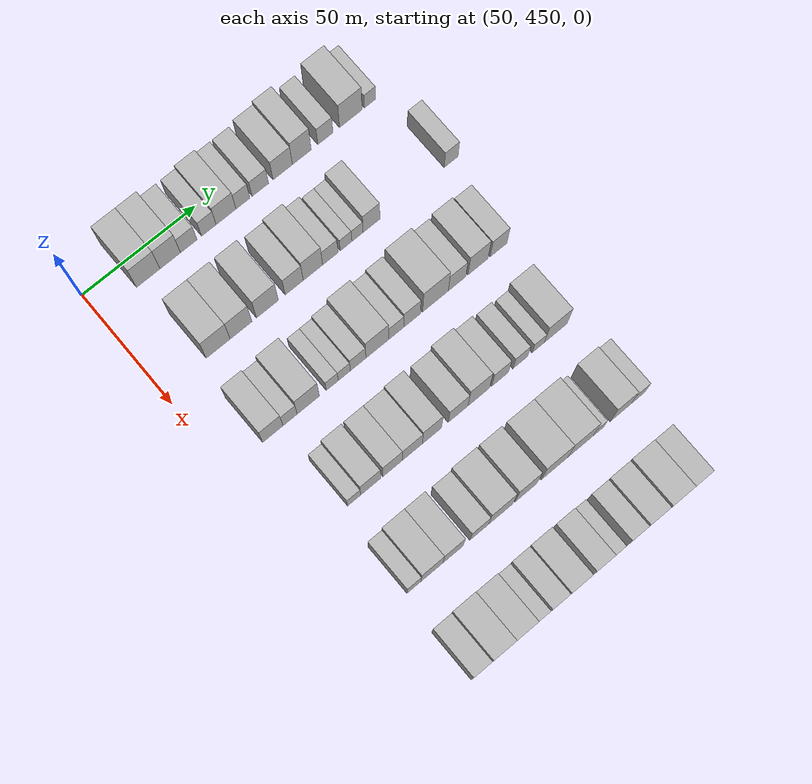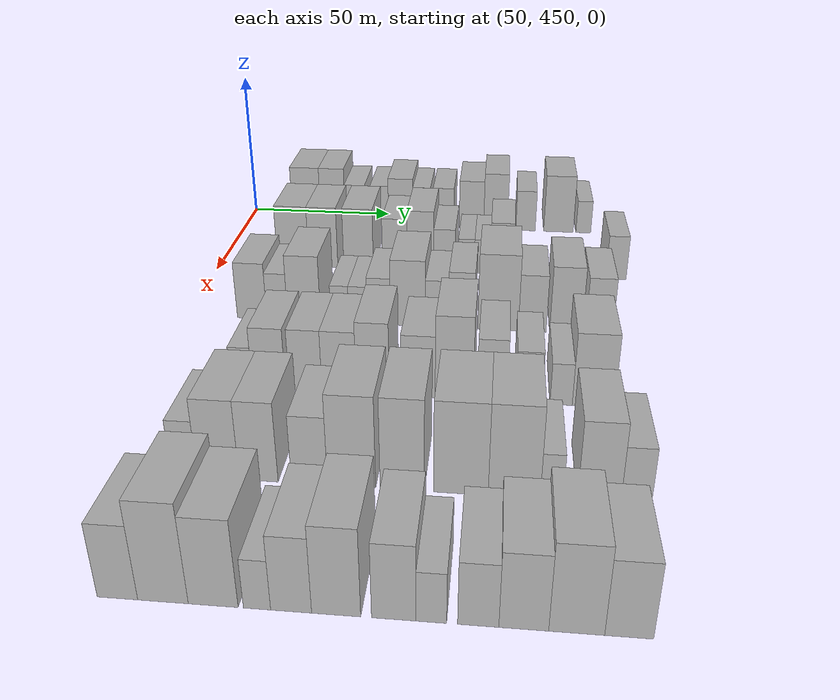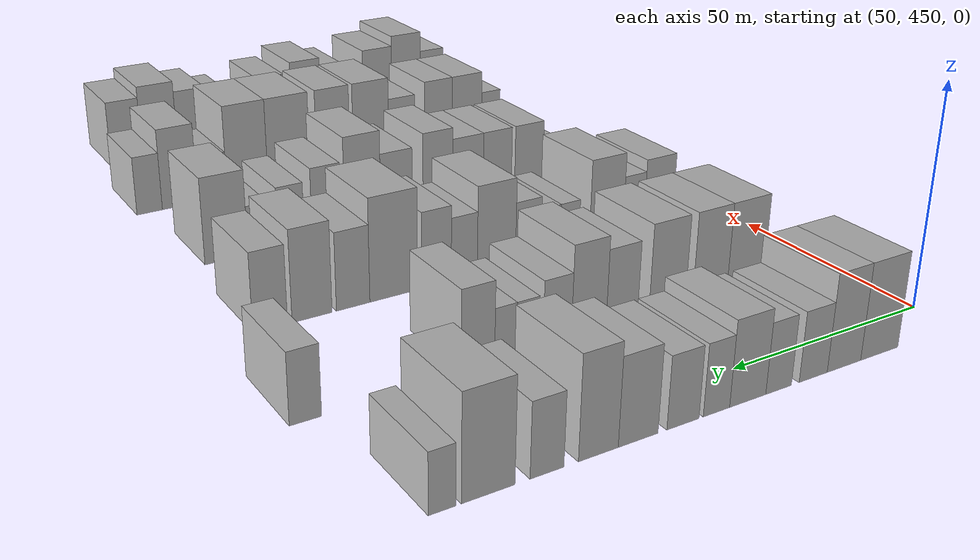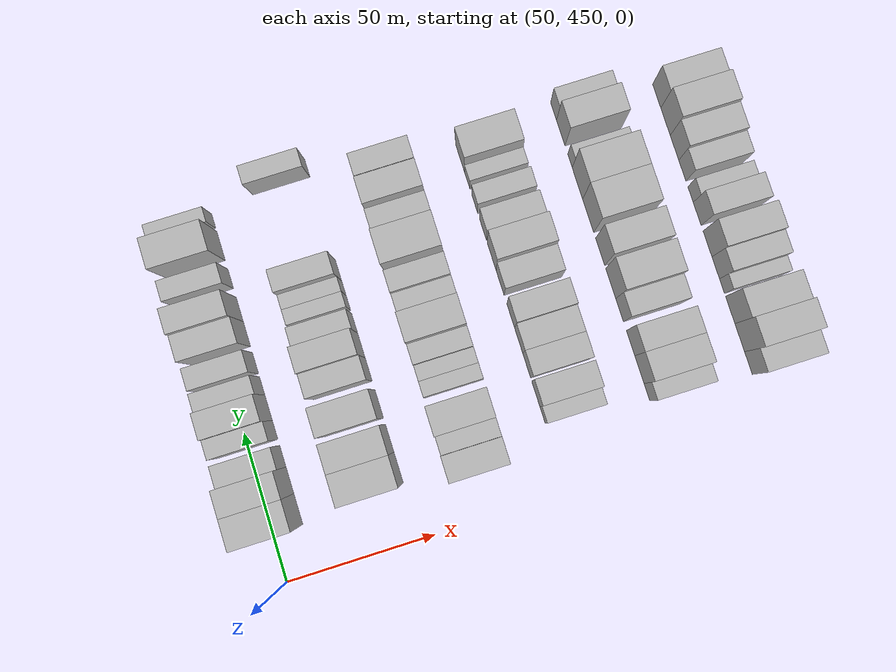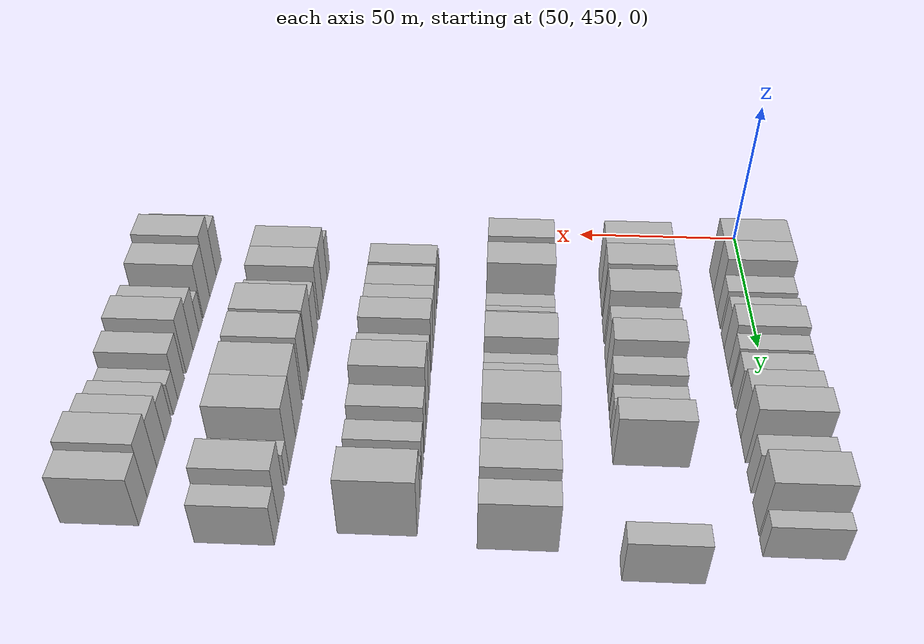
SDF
<sdf version="1.6">
 <world name="default">
  <model name="building_112">
   <static>1</static>
   <pose>50.0000 471.2989 0 0.000000 0.000000 0.000000</pose>
   <link name="link">
    <pose>0 0 10.50 0 0 0</pose>
    <collision name="collision"><geometry><box><size>20.0000 10.3489 21.0000</size></box></geometry></collision>
    <visual name="visual">
     <cast_shadows>0</cast_shadows>
     <geometry><box><size>20.0000 10.3489 21.0000</size></box></geometry>
     <material>
      <script>
       <uri>model://HANNAS_wall/materials/scripts</uri>
       <uri>model://HANNAS_wall/materials/textures</uri>
       <name>vrc/HANNAS_wall</name>
      </script>
     </material>
    </visual>
   </link>
  </model>
  <model name="building_113">
   <static>1</static>
   <pose>50.0000 480.9723 0 0.000000 0.000000 0.000000</pose>
   <link name="link">
    <pose>0 0 10.50 0 0 0</pose>
    <collision name="collision"><geometry><box><size>20.0000 8.9978 21.0000</size></box></geometry></collision>
    <visual name="visual">
     <cast_shadows>0</cast_shadows>
     <geometry><box><size>20.0000 8.9978 21.0000</size></box></geometry>
     <material>
      <script>
       <uri>model://HANNAS_wall/materials/scripts</uri>
       <uri>model://HANNAS_wall/materials/textures</uri>
       <name>vrc/HANNAS_wall</name>
      </script>
     </material>
    </visual>
   </link>
  </model>
  <model name="building_114">
   <static>1</static>
   <pose>50.0000 489.1325 0 0.000000 0.000000 0.000000</pose>
   <link name="link">
    <pose>0 0 7.50 0 0 0</pose>
    <collision name="collision"><geometry><box><size>20.0000 7.3226 15.0000</size></box></geometry></collision>
    <visual name="visual">
     <cast_shadows>0</cast_shadows>
     <geometry><box><size>20.0000 7.3226 15.0000</size></box></geometry>
     <material>
      <script>
       <uri>model://HANNAS_wall/materials/scripts</uri>
       <uri>model://HANNAS_wall/materials/textures</uri>
       <name>vrc/HANNAS_wall</name>
      </script>
     </material>
    </visual>
   </link>
  </model>
  <model name="building_115">
   <static>1</static>
   <pose>50.0000 498.0168 0 0.000000 0.000000 0.000000</pose>
   <link name="link">
    <pose>0 0 7.50 0 0 0</pose>
    <collision name="collision"><geometry><box><size>20.0000 6.4461 15.0000</size></box></geometry></collision>
    <visual name="visual">
     <cast_shadows>0</cast_shadows>
     <geometry><box><size>20.0000 6.4461 15.0000</size></box></geometry>
     <material>
      <script>
       <uri>model://HANNAS_wall/materials/scripts</uri>
       <uri>model://HANNAS_wall/materials/textures</uri>
       <name>vrc/HANNAS_wall</name>
      </script>
     </material>
    </visual>
   </link>
  </model>
  <model name="building_116">
   <static>1</static>
   <pose>50.0000 505.6625 0 0.000000 0.000000 0.000000</pose>
   <link name="link">
    <pose>0 0 9.00 0 0 0</pose>
    <collision name="collision"><geometry><box><size>20.0000 8.8452 18.0000</size></box></geometry></collision>
    <visual name="visual">
     <cast_shadows>0</cast_shadows>
     <geometry><box><size>20.0000 8.8452 18.0000</size></box></geometry>
     <material>
      <script>
       <uri>model://HANNAS_wall/materials/scripts</uri>
       <uri>model://HANNAS_wall/materials/textures</uri>
       <name>vrc/HANNAS_wall</name>
      </script>
     </material>
    </visual>
   </link>
  </model>
  <model name="building_117">
   <static>1</static>
   <pose>50.0000 513.2185 0 0.000000 0.000000 0.000000</pose>
   <link name="link">
    <pose>0 0 7.50 0 0 0</pose>
    <collision name="collision"><geometry><box><size>20.0000 6.2669 15.0000</size></box></geometry></collision>
    <visual name="visual">
     <cast_shadows>0</cast_shadows>
     <geometry><box><size>20.0000 6.2669 15.0000</size></box></geometry>
     <material>
      <script>
       <uri>model://HANNAS_wall/materials/scripts</uri>
       <uri>model://HANNAS_wall/materials/textures</uri>
       <name>vrc/HANNAS_wall</name>
      </script>
     </material>
    </visual>
   </link>
  </model>
  <model name="building_118">
   <static>1</static>
   <pose>50.0000 521.0438 0 0.000000 0.000000 0.000000</pose>
   <link name="link">
    <pose>0 0 7.50 0 0 0</pose>
    <collision name="collision"><geometry><box><size>20.0000 7.3837 15.0000</size></box></geometry></collision>
    <visual name="visual">
     <cast_shadows>0</cast_shadows>
     <geometry><box><size>20.0000 7.3837 15.0000</size></box></geometry>
     <material>
      <script>
       <uri>model://HANNAS_wall/materials/scripts</uri>
       <uri>model://HANNAS_wall/materials/textures</uri>
       <name>vrc/HANNAS_wall</name>
      </script>
     </material>
    </visual>
   </link>
  </model>
  <model name="building_119">
   <static>1</static>
   <pose>50.0000 531.1199 0 0.000000 0.000000 0.000000</pose>
   <link name="link">
    <pose>0 0 9.00 0 0 0</pose>
    <collision name="collision"><geometry><box><size>20.0000 8.7686 18.0000</size></box></geometry></collision>
    <visual name="visual">
     <cast_shadows>0</cast_shadows>
     <geometry><box><size>20.0000 8.7686 18.0000</size></box></geometry>
     <material>
      <script>
       <uri>model://HANNAS_wall/materials/scripts</uri>
       <uri>model://HANNAS_wall/materials/textures</uri>
       <name>vrc/HANNAS_wall</name>
      </script>
     </material>
    </visual>
   </link>
  </model>
  <model name="building_120">
   <static>1</static>
   <pose>50.0000 539.7462 0 0.000000 0.000000 0.000000</pose>
   <link name="link">
    <pose>0 0 10.50 0 0 0</pose>
    <collision name="collision"><geometry><box><size>20.0000 8.4839 21.0000</size></box></geometry></collision>
    <visual name="visual">
     <cast_shadows>0</cast_shadows>
     <geometry><box><size>20.0000 8.4839 21.0000</size></box></geometry>
     <material>
      <script>
       <uri>model://HANNAS_wall/materials/scripts</uri>
       <uri>model://HANNAS_wall/materials/textures</uri>
       <name>vrc/HANNAS_wall</name>
      </script>
     </material>
    </visual>
   </link>
  </model>
  <model name="building_121">
   <static>1</static>
   <pose>50.0000 550.4350 0 0.000000 0.000000 0.000000</pose>
   <link name="link">
    <pose>0 0 7.50 0 0 0</pose>
    <collision name="collision"><geometry><box><size>20.0000 6.8938 15.0000</size></box></geometry></collision>
    <visual name="visual">
     <cast_shadows>0</cast_shadows>
     <geometry><box><size>20.0000 6.8938 15.0000</size></box></geometry>
     <material>
      <script>
       <uri>model://HANNAS_wall/materials/scripts</uri>
       <uri>model://HANNAS_wall/materials/textures</uri>
       <name>vrc/HANNAS_wall</name>
      </script>
     </material>
    </visual>
   </link>
  </model>
  <model name="building_122">
   <static>1</static>
   <pose>50.0000 562.0634 0 0.000000 0.000000 0.000000</pose>
   <link name="link">
    <pose>0 0 10.50 0 0 0</pose>
    <collision name="collision"><geometry><box><size>20.0000 10.3630 21.0000</size></box></geometry></collision>
    <visual name="visual">
     <cast_shadows>0</cast_shadows>
     <geometry><box><size>20.0000 10.3630 21.0000</size></box></geometry>
     <material>
      <script>
       <uri>model://HANNAS_wall/materials/scripts</uri>
       <uri>model://HANNAS_wall/materials/textures</uri>
       <name>vrc/HANNAS_wall</name>
      </script>
     </material>
    </visual>
   </link>
  </model>
  <model name="building_123">
   <static>1</static>
   <pose>50.0000 570.8287 0 0.000000 0.000000 0.000000</pose>
   <link name="link">
    <pose>0 0 6.00 0 0 0</pose>
    <collision name="collision"><geometry><box><size>20.0000 5.1676 12.0000</size></box></geometry></collision>
    <visual name="visual">
     <cast_shadows>0</cast_shadows>
     <geometry><box><size>20.0000 5.1676 12.0000</size></box></geometry>
     <material>
      <script>
       <uri>model://HANNAS_wall/materials/scripts</uri>
       <uri>model://HANNAS_wall/materials/textures</uri>
       <name>vrc/HANNAS_wall</name>
      </script>
     </material>
    </visual>
   </link>
  </model>
  <model name="building_239">
   <static>1</static>
   <pose>85.0000 474.1618 0 0.000000 0.000000 0.000000</pose>
   <link name="link">
    <pose>0 0 10.50 0 0 0</pose>
    <collision name="collision"><geometry><box><size>20.0000 10.4761 21.0000</size></box></geometry></collision>
    <visual name="visual">
     <cast_shadows>0</cast_shadows>
     <geometry><box><size>20.0000 10.4761 21.0000</size></box></geometry>
     <material>
      <script>
       <uri>model://HANNAS_wall/materials/scripts</uri>
       <uri>model://HANNAS_wall/materials/textures</uri>
       <name>vrc/HANNAS_wall</name>
      </script>
     </material>
    </visual>
   </link>
  </model>
  <model name="building_240">
   <static>1</static>
   <pose>85.0000 484.1912 0 0.000000 0.000000 0.000000</pose>
   <link name="link">
    <pose>0 0 10.50 0 0 0</pose>
    <collision name="collision"><geometry><box><size>20.0000 9.5825 21.0000</size></box></geometry></collision>
    <visual name="visual">
     <cast_shadows>0</cast_shadows>
     <geometry><box><size>20.0000 9.5825 21.0000</size></box></geometry>
     <material>
      <script>
       <uri>model://HANNAS_wall/materials/scripts</uri>
       <uri>model://HANNAS_wall/materials/textures</uri>
       <name>vrc/HANNAS_wall</name>
      </script>
     </material>
    </visual>
   </link>
  </model>
  <model name="building_241">
   <static>1</static>
   <pose>85.0000 495.8371 0 0.000000 0.000000 0.000000</pose>
   <link name="link">
    <pose>0 0 10.50 0 0 0</pose>
    <collision name="collision"><geometry><box><size>20.0000 9.7093 21.0000</size></box></geometry></collision>
    <visual name="visual">
     <cast_shadows>0</cast_shadows>
     <geometry><box><size>20.0000 9.7093 21.0000</size></box></geometry>
     <material>
      <script>
       <uri>model://HANNAS_wall/materials/scripts</uri>
       <uri>model://HANNAS_wall/materials/textures</uri>
       <name>vrc/HANNAS_wall</name>
      </script>
     </material>
    </visual>
   </link>
  </model>
  <model name="building_242">
   <static>1</static>
   <pose>85.0000 507.7161 0 0.000000 0.000000 0.000000</pose>
   <link name="link">
    <pose>0 0 9.00 0 0 0</pose>
    <collision name="collision"><geometry><box><size>20.0000 8.0488 18.0000</size></box></geometry></collision>
    <visual name="visual">
     <cast_shadows>0</cast_shadows>
     <geometry><box><size>20.0000 8.0488 18.0000</size></box></geometry>
     <material>
      <script>
       <uri>model://HANNAS_wall/materials/scripts</uri>
       <uri>model://HANNAS_wall/materials/textures</uri>
       <name>vrc/HANNAS_wall</name>
      </script>
     </material>
    </visual>
   </link>
  </model>
  <model name="building_243">
   <static>1</static>
   <pose>85.0000 516.0620 0 0.000000 0.000000 0.000000</pose>
   <link name="link">
    <pose>0 0 10.50 0 0 0</pose>
    <collision name="collision"><geometry><box><size>20.0000 8.6430 21.0000</size></box></geometry></collision>
    <visual name="visual">
     <cast_shadows>0</cast_shadows>
     <geometry><box><size>20.0000 8.6430 21.0000</size></box></geometry>
     <material>
      <script>
       <uri>model://HANNAS_wall/materials/scripts</uri>
       <uri>model://HANNAS_wall/materials/textures</uri>
       <name>vrc/HANNAS_wall</name>
      </script>
     </material>
    </visual>
   </link>
  </model>
  <model name="building_244">
   <static>1</static>
   <pose>85.0000 523.8253 0 0.000000 0.000000 0.000000</pose>
   <link name="link">
    <pose>0 0 7.50 0 0 0</pose>
    <collision name="collision"><geometry><box><size>20.0000 6.8836 15.0000</size></box></geometry></collision>
    <visual name="visual">
     <cast_shadows>0</cast_shadows>
     <geometry><box><size>20.0000 6.8836 15.0000</size></box></geometry>
     <material>
      <script>
       <uri>model://HANNAS_wall/materials/scripts</uri>
       <uri>model://HANNAS_wall/materials/textures</uri>
       <name>vrc/HANNAS_wall</name>
      </script>
     </material>
    </visual>
   </link>
  </model>
  <model name="building_245">
   <static>1</static>
   <pose>85.0000 530.8818 0 0.000000 0.000000 0.000000</pose>
   <link name="link">
    <pose>0 0 6.00 0 0 0</pose>
    <collision name="collision"><geometry><box><size>20.0000 5.2294 12.0000</size></box></geometry></collision>
    <visual name="visual">
     <cast_shadows>0</cast_shadows>
     <geometry><box><size>20.0000 5.2294 12.0000</size></box></geometry>
     <material>
      <script>
       <uri>model://HANNAS_wall/materials/scripts</uri>
       <uri>model://HANNAS_wall/materials/textures</uri>
       <name>vrc/HANNAS_wall</name>
      </script>
     </material>
    </visual>
   </link>
  </model>
  <model name="building_246">
   <static>1</static>
   <pose>85.0000 536.0272 0 0.000000 0.000000 0.000000</pose>
   <link name="link">
    <pose>0 0 6.00 0 0 0</pose>
    <collision name="collision"><geometry><box><size>20.0000 5.0616 12.0000</size></box></geometry></collision>
    <visual name="visual">
     <cast_shadows>0</cast_shadows>
     <geometry><box><size>20.0000 5.0616 12.0000</size></box></geometry>
     <material>
      <script>
       <uri>model://HANNAS_wall/materials/scripts</uri>
       <uri>model://HANNAS_wall/materials/textures</uri>
       <name>vrc/HANNAS_wall</name>
      </script>
     </material>
    </visual>
   </link>
  </model>
  <model name="building_247">
   <static>1</static>
   <pose>85.0000 542.3415 0 0.000000 0.000000 0.000000</pose>
   <link name="link">
    <pose>0 0 9.00 0 0 0</pose>
    <collision name="collision"><geometry><box><size>20.0000 7.5668 18.0000</size></box></geometry></collision>
    <visual name="visual">
     <cast_shadows>0</cast_shadows>
     <geometry><box><size>20.0000 7.5668 18.0000</size></box></geometry>
     <material>
      <script>
       <uri>model://HANNAS_wall/materials/scripts</uri>
       <uri>model://HANNAS_wall/materials/textures</uri>
       <name>vrc/HANNAS_wall</name>
      </script>
     </material>
    </visual>
   </link>
  </model>
  <model name="building_248">
   <static>1</static>
   <pose>85.0000 578.6825 0 0.000000 0.000000 0.000000</pose>
   <link name="link">
    <pose>0 0 7.50 0 0 0</pose>
    <collision name="collision"><geometry><box><size>20.0000 6.3717 15.0000</size></box></geometry></collision>
    <visual name="visual">
     <cast_shadows>0</cast_shadows>
     <geometry><box><size>20.0000 6.3717 15.0000</size></box></geometry>
     <material>
      <script>
       <uri>model://HANNAS_wall/materials/scripts</uri>
       <uri>model://HANNAS_wall/materials/textures</uri>
       <name>vrc/HANNAS_wall</name>
      </script>
     </material>
    </visual>
   </link>
  </model>
  <model name="building_368">
   <static>1</static>
   <pose>120.0000 469.7472 0 0.000000 0.000000 0.000000</pose>
   <link name="link">
    <pose>0 0 9.00 0 0 0</pose>
    <collision name="collision"><geometry><box><size>20.0000 8.8391 18.0000</size></box></geometry></collision>
    <visual name="visual">
     <cast_shadows>0</cast_shadows>
     <geometry><box><size>20.0000 8.8391 18.0000</size></box></geometry>
     <material>
      <script>
       <uri>model://HANNAS_wall/materials/scripts</uri>
       <uri>model://HANNAS_wall/materials/textures</uri>
       <name>vrc/HANNAS_wall</name>
      </script>
     </material>
    </visual>
   </link>
  </model>
  <model name="building_369">
   <static>1</static>
   <pose>120.0000 477.2830 0 0.000000 0.000000 0.000000</pose>
   <link name="link">
    <pose>0 0 7.50 0 0 0</pose>
    <collision name="collision"><geometry><box><size>20.0000 6.2324 15.0000</size></box></geometry></collision>
    <visual name="visual">
     <cast_shadows>0</cast_shadows>
     <geometry><box><size>20.0000 6.2324 15.0000</size></box></geometry>
     <material>
      <script>
       <uri>model://HANNAS_wall/materials/scripts</uri>
       <uri>model://HANNAS_wall/materials/textures</uri>
       <name>vrc/HANNAS_wall</name>
      </script>
     </material>
    </visual>
   </link>
  </model>
  <model name="building_370">
   <static>1</static>
   <pose>120.0000 485.2787 0 0.000000 0.000000 0.000000</pose>
   <link name="link">
    <pose>0 0 10.50 0 0 0</pose>
    <collision name="collision"><geometry><box><size>20.0000 9.7591 21.0000</size></box></geometry></collision>
    <visual name="visual">
     <cast_shadows>0</cast_shadows>
     <geometry><box><size>20.0000 9.7591 21.0000</size></box></geometry>
     <material>
      <script>
       <uri>model://HANNAS_wall/materials/scripts</uri>
       <uri>model://HANNAS_wall/materials/textures</uri>
       <name>vrc/HANNAS_wall</name>
      </script>
     </material>
    </visual>
   </link>
  </model>
  <model name="building_371">
   <static>1</static>
   <pose>120.0000 495.8177 0 0.000000 0.000000 0.000000</pose>
   <link name="link">
    <pose>0 0 6.00 0 0 0</pose>
    <collision name="collision"><geometry><box><size>20.0000 5.3188 12.0000</size></box></geometry></collision>
    <visual name="visual">
     <cast_shadows>0</cast_shadows>
     <geometry><box><size>20.0000 5.3188 12.0000</size></box></geometry>
     <material>
      <script>
       <uri>model://HANNAS_wall/materials/scripts</uri>
       <uri>model://HANNAS_wall/materials/textures</uri>
       <name>vrc/HANNAS_wall</name>
      </script>
     </material>
    </visual>
   </link>
  </model>
  <model name="building_372">
   <static>1</static>
   <pose>120.0000 501.1385 0 0.000000 0.000000 0.000000</pose>
   <link name="link">
    <pose>0 0 6.00 0 0 0</pose>
    <collision name="collision"><geometry><box><size>20.0000 5.3229 12.0000</size></box></geometry></collision>
    <visual name="visual">
     <cast_shadows>0</cast_shadows>
     <geometry><box><size>20.0000 5.3229 12.0000</size></box></geometry>
     <material>
      <script>
       <uri>model://HANNAS_wall/materials/scripts</uri>
       <uri>model://HANNAS_wall/materials/textures</uri>
       <name>vrc/HANNAS_wall</name>
      </script>
     </material>
    </visual>
   </link>
  </model>
  <model name="building_373">
   <static>1</static>
   <pose>120.0000 507.2438 0 0.000000 0.000000 0.000000</pose>
   <link name="link">
    <pose>0 0 7.50 0 0 0</pose>
    <collision name="collision"><geometry><box><size>20.0000 6.8878 15.0000</size></box></geometry></collision>
    <visual name="visual">
     <cast_shadows>0</cast_shadows>
     <geometry><box><size>20.0000 6.8878 15.0000</size></box></geometry>
     <material>
      <script>
       <uri>model://HANNAS_wall/materials/scripts</uri>
       <uri>model://HANNAS_wall/materials/textures</uri>
       <name>vrc/HANNAS_wall</name>
      </script>
     </material>
    </visual>
   </link>
  </model>
  <model name="building_374">
   <static>1</static>
   <pose>120.0000 515.7389 0 0.000000 0.000000 0.000000</pose>
   <link name="link">
    <pose>0 0 10.50 0 0 0</pose>
    <collision name="collision"><geometry><box><size>20.0000 10.1023 21.0000</size></box></geometry></collision>
    <visual name="visual">
     <cast_shadows>0</cast_shadows>
     <geometry><box><size>20.0000 10.1023 21.0000</size></box></geometry>
     <material>
      <script>
       <uri>model://HANNAS_wall/materials/scripts</uri>
       <uri>model://HANNAS_wall/materials/textures</uri>
       <name>vrc/HANNAS_wall</name>
      </script>
     </material>
    </visual>
   </link>
  </model>
  <model name="building_375">
   <static>1</static>
   <pose>120.0000 524.1468 0 0.000000 0.000000 0.000000</pose>
   <link name="link">
    <pose>0 0 7.50 0 0 0</pose>
    <collision name="collision"><geometry><box><size>20.0000 6.7134 15.0000</size></box></geometry></collision>
    <visual name="visual">
     <cast_shadows>0</cast_shadows>
     <geometry><box><size>20.0000 6.7134 15.0000</size></box></geometry>
     <material>
      <script>
       <uri>model://HANNAS_wall/materials/scripts</uri>
       <uri>model://HANNAS_wall/materials/textures</uri>
       <name>vrc/HANNAS_wall</name>
      </script>
     </material>
    </visual>
   </link>
  </model>
  <model name="building_376">
   <static>1</static>
   <pose>120.0000 531.2281 0 0.000000 0.000000 0.000000</pose>
   <link name="link">
    <pose>0 0 9.00 0 0 0</pose>
    <collision name="collision"><geometry><box><size>20.0000 7.4493 18.0000</size></box></geometry></collision>
    <visual name="visual">
     <cast_shadows>0</cast_shadows>
     <geometry><box><size>20.0000 7.4493 18.0000</size></box></geometry>
     <material>
      <script>
       <uri>model://HANNAS_wall/materials/scripts</uri>
       <uri>model://HANNAS_wall/materials/textures</uri>
       <name>vrc/HANNAS_wall</name>
      </script>
     </material>
    </visual>
   </link>
  </model>
  <model name="building_377">
   <static>1</static>
   <pose>120.0000 541.7628 0 0.000000 0.000000 0.000000</pose>
   <link name="link">
    <pose>0 0 12.00 0 0 0</pose>
    <collision name="collision"><geometry><box><size>20.0000 11.6201 24.0000</size></box></geometry></collision>
    <visual name="visual">
     <cast_shadows>0</cast_shadows>
     <geometry><box><size>20.0000 11.6201 24.0000</size></box></geometry>
     <material>
      <script>
       <uri>model://HANNAS_wall/materials/scripts</uri>
       <uri>model://HANNAS_wall/materials/textures</uri>
       <name>vrc/HANNAS_wall</name>
      </script>
     </material>
    </visual>
   </link>
  </model>
  <model name="building_378">
   <static>1</static>
   <pose>120.0000 551.5197 0 0.000000 0.000000 0.000000</pose>
   <link name="link">
    <pose>0 0 9.00 0 0 0</pose>
    <collision name="collision"><geometry><box><size>20.0000 7.8937 18.0000</size></box></geometry></collision>
    <visual name="visual">
     <cast_shadows>0</cast_shadows>
     <geometry><box><size>20.0000 7.8937 18.0000</size></box></geometry>
     <material>
      <script>
       <uri>model://HANNAS_wall/materials/scripts</uri>
       <uri>model://HANNAS_wall/materials/textures</uri>
       <name>vrc/HANNAS_wall</name>
      </script>
     </material>
    </visual>
   </link>
  </model>
  <model name="building_379">
   <static>1</static>
   <pose>120.0000 561.0235 0 0.000000 0.000000 0.000000</pose>
   <link name="link">
    <pose>0 0 10.50 0 0 0</pose>
    <collision name="collision"><geometry><box><size>20.0000 9.1137 21.0000</size></box></geometry></collision>
    <visual name="visual">
     <cast_shadows>0</cast_shadows>
     <geometry><box><size>20.0000 9.1137 21.0000</size></box></geometry>
     <material>
      <script>
       <uri>model://HANNAS_wall/materials/scripts</uri>
       <uri>model://HANNAS_wall/materials/textures</uri>
       <name>vrc/HANNAS_wall</name>
      </script>
     </material>
    </visual>
   </link>
  </model>
  <model name="building_380">
   <static>1</static>
   <pose>120.0000 570.4014 0 0.000000 0.000000 0.000000</pose>
   <link name="link">
    <pose>0 0 9.00 0 0 0</pose>
    <collision name="collision"><geometry><box><size>20.0000 7.6422 18.0000</size></box></geometry></collision>
    <visual name="visual">
     <cast_shadows>0</cast_shadows>
     <geometry><box><size>20.0000 7.6422 18.0000</size></box></geometry>
     <material>
      <script>
       <uri>model://HANNAS_wall/materials/scripts</uri>
       <uri>model://HANNAS_wall/materials/textures</uri>
       <name>vrc/HANNAS_wall</name>
      </script>
     </material>
    </visual>
   </link>
  </model>
  <model name="building_495">
   <static>1</static>
   <pose>155.0000 476.3844 0 0.000000 0.000000 0.000000</pose>
   <link name="link">
    <pose>0 0 6.00 0 0 0</pose>
    <collision name="collision"><geometry><box><size>20.0000 5.6899 12.0000</size></box></geometry></collision>
    <visual name="visual">
     <cast_shadows>0</cast_shadows>
     <geometry><box><size>20.0000 5.6899 12.0000</size></box></geometry>
     <material>
      <script>
       <uri>model://HANNAS_wall/materials/scripts</uri>
       <uri>model://HANNAS_wall/materials/textures</uri>
       <name>vrc/HANNAS_wall</name>
      </script>
     </material>
    </visual>
   </link>
  </model>
  <model name="building_496">
   <static>1</static>
   <pose>155.0000 483.5814 0 0.000000 0.000000 0.000000</pose>
   <link name="link">
    <pose>0 0 9.00 0 0 0</pose>
    <collision name="collision"><geometry><box><size>20.0000 8.7043 18.0000</size></box></geometry></collision>
    <visual name="visual">
     <cast_shadows>0</cast_shadows>
     <geometry><box><size>20.0000 8.7043 18.0000</size></box></geometry>
     <material>
      <script>
       <uri>model://HANNAS_wall/materials/scripts</uri>
       <uri>model://HANNAS_wall/materials/textures</uri>
       <name>vrc/HANNAS_wall</name>
      </script>
     </material>
    </visual>
   </link>
  </model>
  <model name="building_497">
   <static>1</static>
   <pose>155.0000 493.1668 0 0.000000 0.000000 0.000000</pose>
   <link name="link">
    <pose>0 0 9.00 0 0 0</pose>
    <collision name="collision"><geometry><box><size>20.0000 8.4665 18.0000</size></box></geometry></collision>
    <visual name="visual">
     <cast_shadows>0</cast_shadows>
     <geometry><box><size>20.0000 8.4665 18.0000</size></box></geometry>
     <material>
      <script>
       <uri>model://HANNAS_wall/materials/scripts</uri>
       <uri>model://HANNAS_wall/materials/textures</uri>
       <name>vrc/HANNAS_wall</name>
      </script>
     </material>
    </visual>
   </link>
  </model>
  <model name="building_498">
   <static>1</static>
   <pose>155.0000 501.8245 0 0.000000 0.000000 0.000000</pose>
   <link name="link">
    <pose>0 0 9.00 0 0 0</pose>
    <collision name="collision"><geometry><box><size>20.0000 8.8488 18.0000</size></box></geometry></collision>
    <visual name="visual">
     <cast_shadows>0</cast_shadows>
     <geometry><box><size>20.0000 8.8488 18.0000</size></box></geometry>
     <material>
      <script>
       <uri>model://HANNAS_wall/materials/scripts</uri>
       <uri>model://HANNAS_wall/materials/textures</uri>
       <name>vrc/HANNAS_wall</name>
      </script>
     </material>
    </visual>
   </link>
  </model>
  <model name="building_499">
   <static>1</static>
   <pose>155.0000 510.4845 0 0.000000 0.000000 0.000000</pose>
   <link name="link">
    <pose>0 0 10.50 0 0 0</pose>
    <collision name="collision"><geometry><box><size>20.0000 8.4713 21.0000</size></box></geometry></collision>
    <visual name="visual">
     <cast_shadows>0</cast_shadows>
     <geometry><box><size>20.0000 8.4713 21.0000</size></box></geometry>
     <material>
      <script>
       <uri>model://HANNAS_wall/materials/scripts</uri>
       <uri>model://HANNAS_wall/materials/textures</uri>
       <name>vrc/HANNAS_wall</name>
      </script>
     </material>
    </visual>
   </link>
  </model>
  <model name="building_500">
   <static>1</static>
   <pose>155.0000 522.0709 0 0.000000 0.000000 0.000000</pose>
   <link name="link">
    <pose>0 0 9.00 0 0 0</pose>
    <collision name="collision"><geometry><box><size>20.0000 8.7014 18.0000</size></box></geometry></collision>
    <visual name="visual">
     <cast_shadows>0</cast_shadows>
     <geometry><box><size>20.0000 8.7014 18.0000</size></box></geometry>
     <material>
      <script>
       <uri>model://HANNAS_wall/materials/scripts</uri>
       <uri>model://HANNAS_wall/materials/textures</uri>
       <name>vrc/HANNAS_wall</name>
      </script>
     </material>
    </visual>
   </link>
  </model>
  <model name="building_501">
   <static>1</static>
   <pose>155.0000 531.2300 0 0.000000 0.000000 0.000000</pose>
   <link name="link">
    <pose>0 0 12.00 0 0 0</pose>
    <collision name="collision"><geometry><box><size>20.0000 9.6168 24.0000</size></box></geometry></collision>
    <visual name="visual">
     <cast_shadows>0</cast_shadows>
     <geometry><box><size>20.0000 9.6168 24.0000</size></box></geometry>
     <material>
      <script>
       <uri>model://HANNAS_wall/materials/scripts</uri>
       <uri>model://HANNAS_wall/materials/textures</uri>
       <name>vrc/HANNAS_wall</name>
      </script>
     </material>
    </visual>
   </link>
  </model>
  <model name="building_502">
   <static>1</static>
   <pose>155.0000 540.8244 0 0.000000 0.000000 0.000000</pose>
   <link name="link">
    <pose>0 0 9.00 0 0 0</pose>
    <collision name="collision"><geometry><box><size>20.0000 7.5722 18.0000</size></box></geometry></collision>
    <visual name="visual">
     <cast_shadows>0</cast_shadows>
     <geometry><box><size>20.0000 7.5722 18.0000</size></box></geometry>
     <material>
      <script>
       <uri>model://HANNAS_wall/materials/scripts</uri>
       <uri>model://HANNAS_wall/materials/textures</uri>
       <name>vrc/HANNAS_wall</name>
      </script>
     </material>
    </visual>
   </link>
  </model>
  <model name="building_503">
   <static>1</static>
   <pose>155.0000 549.9511 0 0.000000 0.000000 0.000000</pose>
   <link name="link">
    <pose>0 0 7.50 0 0 0</pose>
    <collision name="collision"><geometry><box><size>20.0000 6.6812 15.0000</size></box></geometry></collision>
    <visual name="visual">
     <cast_shadows>0</cast_shadows>
     <geometry><box><size>20.0000 6.6812 15.0000</size></box></geometry>
     <material>
      <script>
       <uri>model://HANNAS_wall/materials/scripts</uri>
       <uri>model://HANNAS_wall/materials/textures</uri>
       <name>vrc/HANNAS_wall</name>
      </script>
     </material>
    </visual>
   </link>
  </model>
  <model name="building_504">
   <static>1</static>
   <pose>155.0000 558.0524 0 0.000000 0.000000 0.000000</pose>
   <link name="link">
    <pose>0 0 6.00 0 0 0</pose>
    <collision name="collision"><geometry><box><size>20.0000 5.5214 12.0000</size></box></geometry></collision>
    <visual name="visual">
     <cast_shadows>0</cast_shadows>
     <geometry><box><size>20.0000 5.5214 12.0000</size></box></geometry>
     <material>
      <script>
       <uri>model://HANNAS_wall/materials/scripts</uri>
       <uri>model://HANNAS_wall/materials/textures</uri>
       <name>vrc/HANNAS_wall</name>
      </script>
     </material>
    </visual>
   </link>
  </model>
  <model name="building_505">
   <static>1</static>
   <pose>155.0000 566.0104 0 0.000000 0.000000 0.000000</pose>
   <link name="link">
    <pose>0 0 10.50 0 0 0</pose>
    <collision name="collision"><geometry><box><size>20.0000 10.3947 21.0000</size></box></geometry></collision>
    <visual name="visual">
     <cast_shadows>0</cast_shadows>
     <geometry><box><size>20.0000 10.3947 21.0000</size></box></geometry>
     <material>
      <script>
       <uri>model://HANNAS_wall/materials/scripts</uri>
       <uri>model://HANNAS_wall/materials/textures</uri>
       <name>vrc/HANNAS_wall</name>
      </script>
     </material>
    </visual>
   </link>
  </model>
  <model name="building_617">
   <static>1</static>
   <pose>190.0000 473.0298 0 0.000000 0.000000 0.000000</pose>
   <link name="link">
    <pose>0 0 7.50 0 0 0</pose>
    <collision name="collision"><geometry><box><size>20.0000 6.0141 15.0000</size></box></geometry></collision>
    <visual name="visual">
     <cast_shadows>0</cast_shadows>
     <geometry><box><size>20.0000 6.0141 15.0000</size></box></geometry>
     <material>
      <script>
       <uri>model://HANNAS_wall/materials/scripts</uri>
       <uri>model://HANNAS_wall/materials/textures</uri>
       <name>vrc/HANNAS_wall</name>
      </script>
     </material>
    </visual>
   </link>
  </model>
  <model name="building_618">
   <static>1</static>
   <pose>190.0000 480.8187 0 0.000000 0.000000 0.000000</pose>
   <link name="link">
    <pose>0 0 10.50 0 0 0</pose>
    <collision name="collision"><geometry><box><size>20.0000 9.5637 21.0000</size></box></geometry></collision>
    <visual name="visual">
     <cast_shadows>0</cast_shadows>
     <geometry><box><size>20.0000 9.5637 21.0000</size></box></geometry>
     <material>
      <script>
       <uri>model://HANNAS_wall/materials/scripts</uri>
       <uri>model://HANNAS_wall/materials/textures</uri>
       <name>vrc/HANNAS_wall</name>
      </script>
     </material>
    </visual>
   </link>
  </model>
  <model name="building_619">
   <static>1</static>
   <pose>190.0000 489.9829 0 0.000000 0.000000 0.000000</pose>
   <link name="link">
    <pose>0 0 10.50 0 0 0</pose>
    <collision name="collision"><geometry><box><size>20.0000 8.7647 21.0000</size></box></geometry></collision>
    <visual name="visual">
     <cast_shadows>0</cast_shadows>
     <geometry><box><size>20.0000 8.7647 21.0000</size></box></geometry>
     <material>
      <script>
       <uri>model://HANNAS_wall/materials/scripts</uri>
       <uri>model://HANNAS_wall/materials/textures</uri>
       <name>vrc/HANNAS_wall</name>
      </script>
     </material>
    </visual>
   </link>
  </model>
  <model name="building_620">
   <static>1</static>
   <pose>190.0000 501.4058 0 0.000000 0.000000 0.000000</pose>
   <link name="link">
    <pose>0 0 9.00 0 0 0</pose>
    <collision name="collision"><geometry><box><size>20.0000 8.0811 18.0000</size></box></geometry></collision>
    <visual name="visual">
     <cast_shadows>0</cast_shadows>
     <geometry><box><size>20.0000 8.0811 18.0000</size></box></geometry>
     <material>
      <script>
       <uri>model://HANNAS_wall/materials/scripts</uri>
       <uri>model://HANNAS_wall/materials/textures</uri>
       <name>vrc/HANNAS_wall</name>
      </script>
     </material>
    </visual>
   </link>
  </model>
  <model name="building_621">
   <static>1</static>
   <pose>190.0000 510.7861 0 0.000000 0.000000 0.000000</pose>
   <link name="link">
    <pose>0 0 12.00 0 0 0</pose>
    <collision name="collision"><geometry><box><size>20.0000 10.6795 24.0000</size></box></geometry></collision>
    <visual name="visual">
     <cast_shadows>0</cast_shadows>
     <geometry><box><size>20.0000 10.6795 24.0000</size></box></geometry>
     <material>
      <script>
       <uri>model://HANNAS_wall/materials/scripts</uri>
       <uri>model://HANNAS_wall/materials/textures</uri>
       <name>vrc/HANNAS_wall</name>
      </script>
     </material>
    </visual>
   </link>
  </model>
  <model name="building_622">
   <static>1</static>
   <pose>190.0000 521.9782 0 0.000000 0.000000 0.000000</pose>
   <link name="link">
    <pose>0 0 12.00 0 0 0</pose>
    <collision name="collision"><geometry><box><size>20.0000 9.7047 24.0000</size></box></geometry></collision>
    <visual name="visual">
     <cast_shadows>0</cast_shadows>
     <geometry><box><size>20.0000 9.7047 24.0000</size></box></geometry>
     <material>
      <script>
       <uri>model://HANNAS_wall/materials/scripts</uri>
       <uri>model://HANNAS_wall/materials/textures</uri>
       <name>vrc/HANNAS_wall</name>
      </script>
     </material>
    </visual>
   </link>
  </model>
  <model name="building_623">
   <static>1</static>
   <pose>190.0000 534.7866 0 0.000000 0.000000 0.000000</pose>
   <link name="link">
    <pose>0 0 12.00 0 0 0</pose>
    <collision name="collision"><geometry><box><size>20.0000 11.9120 24.0000</size></box></geometry></collision>
    <visual name="visual">
     <cast_shadows>0</cast_shadows>
     <geometry><box><size>20.0000 11.9120 24.0000</size></box></geometry>
     <material>
      <script>
       <uri>model://HANNAS_wall/materials/scripts</uri>
       <uri>model://HANNAS_wall/materials/textures</uri>
       <name>vrc/HANNAS_wall</name>
      </script>
     </material>
    </visual>
   </link>
  </model>
  <model name="building_624">
   <static>1</static>
   <pose>190.0000 546.3554 0 0.000000 0.000000 0.000000</pose>
   <link name="link">
    <pose>0 0 12.00 0 0 0</pose>
    <collision name="collision"><geometry><box><size>20.0000 11.2257 24.0000</size></box></geometry></collision>
    <visual name="visual">
     <cast_shadows>0</cast_shadows>
     <geometry><box><size>20.0000 11.2257 24.0000</size></box></geometry>
     <material>
      <script>
       <uri>model://HANNAS_wall/materials/scripts</uri>
       <uri>model://HANNAS_wall/materials/textures</uri>
       <name>vrc/HANNAS_wall</name>
      </script>
     </material>
    </visual>
   </link>
  </model>
  <model name="building_625">
   <static>1</static>
   <pose>190.0000 554.4163 0 0.000000 0.000000 0.000000</pose>
   <link name="link">
    <pose>0 0 6.00 0 0 0</pose>
    <collision name="collision"><geometry><box><size>20.0000 4.8962 12.0000</size></box></geometry></collision>
    <visual name="visual">
     <cast_shadows>0</cast_shadows>
     <geometry><box><size>20.0000 4.8962 12.0000</size></box></geometry>
     <material>
      <script>
       <uri>model://HANNAS_wall/materials/scripts</uri>
       <uri>model://HANNAS_wall/materials/textures</uri>
       <name>vrc/HANNAS_wall</name>
      </script>
     </material>
    </visual>
   </link>
  </model>
  <model name="building_626">
   <static>1</static>
   <pose>190.0000 564.4714 0 0.000000 0.000000 0.000000</pose>
   <link name="link">
    <pose>0 0 10.50 0 0 0</pose>
    <collision name="collision"><geometry><box><size>20.0000 9.2140 21.0000</size></box></geometry></collision>
    <visual name="visual">
     <cast_shadows>0</cast_shadows>
     <geometry><box><size>20.0000 9.2140 21.0000</size></box></geometry>
     <material>
      <script>
       <uri>model://HANNAS_wall/materials/scripts</uri>
       <uri>model://HANNAS_wall/materials/textures</uri>
       <name>vrc/HANNAS_wall</name>
      </script>
     </material>
    </visual>
   </link>
  </model>
  <model name="building_627">
   <static>1</static>
   <pose>190.0000 572.3150 0 0.000000 0.000000 0.000000</pose>
   <link name="link">
    <pose>0 0 7.50 0 0 0</pose>
    <collision name="collision"><geometry><box><size>20.0000 6.4731 15.0000</size></box></geometry></collision>
    <visual name="visual">
     <cast_shadows>0</cast_shadows>
     <geometry><box><size>20.0000 6.4731 15.0000</size></box></geometry>
     <material>
      <script>
       <uri>model://HANNAS_wall/materials/scripts</uri>
       <uri>model://HANNAS_wall/materials/textures</uri>
       <name>vrc/HANNAS_wall</name>
      </script>
     </material>
    </visual>
   </link>
  </model>
  <model name="building_747">
   <static>1</static>
   <pose>225.0000 471.9881 0 0.000000 0.000000 0.000000</pose>
   <link name="link">
    <pose>0 0 9.00 0 0 0</pose>
    <collision name="collision"><geometry><box><size>20.0000 7.8945 18.0000</size></box></geometry></collision>
    <visual name="visual">
     <cast_shadows>0</cast_shadows>
     <geometry><box><size>20.0000 7.8945 18.0000</size></box></geometry>
     <material>
      <script>
       <uri>model://HANNAS_wall/materials/scripts</uri>
       <uri>model://HANNAS_wall/materials/textures</uri>
       <name>vrc/HANNAS_wall</name>
      </script>
     </material>
    </visual>
   </link>
  </model>
  <model name="building_748">
   <static>1</static>
   <pose>225.0000 480.8126 0 0.000000 0.000000 0.000000</pose>
   <link name="link">
    <pose>0 0 12.00 0 0 0</pose>
    <collision name="collision"><geometry><box><size>20.0000 9.7546 24.0000</size></box></geometry></collision>
    <visual name="visual">
     <cast_shadows>0</cast_shadows>
     <geometry><box><size>20.0000 9.7546 24.0000</size></box></geometry>
     <material>
      <script>
       <uri>model://HANNAS_wall/materials/scripts</uri>
       <uri>model://HANNAS_wall/materials/textures</uri>
       <name>vrc/HANNAS_wall</name>
      </script>
     </material>
    </visual>
   </link>
  </model>
  <model name="building_749">
   <static>1</static>
   <pose>225.0000 490.4542 0 0.000000 0.000000 0.000000</pose>
   <link name="link">
    <pose>0 0 10.50 0 0 0</pose>
    <collision name="collision"><geometry><box><size>20.0000 9.5284 21.0000</size></box></geometry></collision>
    <visual name="visual">
     <cast_shadows>0</cast_shadows>
     <geometry><box><size>20.0000 9.5284 21.0000</size></box></geometry>
     <material>
      <script>
       <uri>model://HANNAS_wall/materials/scripts</uri>
       <uri>model://HANNAS_wall/materials/textures</uri>
       <name>vrc/HANNAS_wall</name>
      </script>
     </material>
    </visual>
   </link>
  </model>
  <model name="building_750">
   <static>1</static>
   <pose>225.0000 498.7986 0 0.000000 0.000000 0.000000</pose>
   <link name="link">
    <pose>0 0 6.00 0 0 0</pose>
    <collision name="collision"><geometry><box><size>20.0000 5.1606 12.0000</size></box></geometry></collision>
    <visual name="visual">
     <cast_shadows>0</cast_shadows>
     <geometry><box><size>20.0000 5.1606 12.0000</size></box></geometry>
     <material>
      <script>
       <uri>model://HANNAS_wall/materials/scripts</uri>
       <uri>model://HANNAS_wall/materials/textures</uri>
       <name>vrc/HANNAS_wall</name>
      </script>
     </material>
    </visual>
   </link>
  </model>
  <model name="building_751">
   <static>1</static>
   <pose>225.0000 505.2352 0 0.000000 0.000000 0.000000</pose>
   <link name="link">
    <pose>0 0 9.00 0 0 0</pose>
    <collision name="collision"><geometry><box><size>20.0000 7.7125 18.0000</size></box></geometry></collision>
    <visual name="visual">
     <cast_shadows>0</cast_shadows>
     <geometry><box><size>20.0000 7.7125 18.0000</size></box></geometry>
     <material>
      <script>
       <uri>model://HANNAS_wall/materials/scripts</uri>
       <uri>model://HANNAS_wall/materials/textures</uri>
       <name>vrc/HANNAS_wall</name>
      </script>
     </material>
    </visual>
   </link>
  </model>
  <model name="building_752">
   <static>1</static>
   <pose>225.0000 513.6740 0 0.000000 0.000000 0.000000</pose>
   <link name="link">
    <pose>0 0 10.50 0 0 0</pose>
    <collision name="collision"><geometry><box><size>20.0000 9.1651 21.0000</size></box></geometry></collision>
    <visual name="visual">
     <cast_shadows>0</cast_shadows>
     <geometry><box><size>20.0000 9.1651 21.0000</size></box></geometry>
     <material>
      <script>
       <uri>model://HANNAS_wall/materials/scripts</uri>
       <uri>model://HANNAS_wall/materials/textures</uri>
       <name>vrc/HANNAS_wall</name>
      </script>
     </material>
    </visual>
   </link>
  </model>
  <model name="building_753">
   <static>1</static>
   <pose>225.0000 524.3567 0 0.000000 0.000000 0.000000</pose>
   <link name="link">
    <pose>0 0 9.00 0 0 0</pose>
    <collision name="collision"><geometry><box><size>20.0000 8.2004 18.0000</size></box></geometry></collision>
    <visual name="visual">
     <cast_shadows>0</cast_shadows>
     <geometry><box><size>20.0000 8.2004 18.0000</size></box></geometry>
     <material>
      <script>
       <uri>model://HANNAS_wall/materials/scripts</uri>
       <uri>model://HANNAS_wall/materials/textures</uri>
       <name>vrc/HANNAS_wall</name>
      </script>
     </material>
    </visual>
   </link>
  </model>
  <model name="building_754">
   <static>1</static>
   <pose>225.0000 531.2686 0 0.000000 0.000000 0.000000</pose>
   <link name="link">
    <pose>0 0 6.00 0 0 0</pose>
    <collision name="collision"><geometry><box><size>20.0000 5.6235 12.0000</size></box></geometry></collision>
    <visual name="visual">
     <cast_shadows>0</cast_shadows>
     <geometry><box><size>20.0000 5.6235 12.0000</size></box></geometry>
     <material>
      <script>
       <uri>model://HANNAS_wall/materials/scripts</uri>
       <uri>model://HANNAS_wall/materials/textures</uri>
       <name>vrc/HANNAS_wall</name>
      </script>
     </material>
    </visual>
   </link>
  </model>
  <model name="building_755">
   <static>1</static>
   <pose>225.0000 539.8272 0 0.000000 0.000000 0.000000</pose>
   <link name="link">
    <pose>0 0 7.50 0 0 0</pose>
    <collision name="collision"><geometry><box><size>20.0000 7.4937 15.0000</size></box></geometry></collision>
    <visual name="visual">
     <cast_shadows>0</cast_shadows>
     <geometry><box><size>20.0000 7.4937 15.0000</size></box></geometry>
     <material>
      <script>
       <uri>model://HANNAS_wall/materials/scripts</uri>
       <uri>model://HANNAS_wall/materials/textures</uri>
       <name>vrc/HANNAS_wall</name>
      </script>
     </material>
    </visual>
   </link>
  </model>
  <model name="building_756">
   <static>1</static>
   <pose>225.0000 548.0641 0 0.000000 0.000000 0.000000</pose>
   <link name="link">
    <pose>0 0 9.00 0 0 0</pose>
    <collision name="collision"><geometry><box><size>20.0000 8.9801 18.0000</size></box></geometry></collision>
    <visual name="visual">
     <cast_shadows>0</cast_shadows>
     <geometry><box><size>20.0000 8.9801 18.0000</size></box></geometry>
     <material>
      <script>
       <uri>model://HANNAS_wall/materials/scripts</uri>
       <uri>model://HANNAS_wall/materials/textures</uri>
       <name>vrc/HANNAS_wall</name>
      </script>
     </material>
    </visual>
   </link>
  </model>
  <model name="building_757">
   <static>1</static>
   <pose>225.0000 557.5517 0 0.000000 0.000000 0.000000</pose>
   <link name="link">
    <pose>0 0 10.50 0 0 0</pose>
    <collision name="collision"><geometry><box><size>20.0000 9.9951 21.0000</size></box></geometry></collision>
    <visual name="visual">
     <cast_shadows>0</cast_shadows>
     <geometry><box><size>20.0000 9.9951 21.0000</size></box></geometry>
     <material>
      <script>
       <uri>model://HANNAS_wall/materials/scripts</uri>
       <uri>model://HANNAS_wall/materials/textures</uri>
       <name>vrc/HANNAS_wall</name>
      </script>
     </material>
    </visual>
   </link>
  </model>
  <model name="building_758">
   <static>1</static>
   <pose>225.0000 566.8802 0 0.000000 0.000000 0.000000</pose>
   <link name="link">
    <pose>0 0 9.00 0 0 0</pose>
    <collision name="collision"><geometry><box><size>20.0000 8.6617 18.0000</size></box></geometry></collision>
    <visual name="visual">
     <cast_shadows>0</cast_shadows>
     <geometry><box><size>20.0000 8.6617 18.0000</size></box></geometry>
     <material>
      <script>
       <uri>model://HANNAS_wall/materials/scripts</uri>
       <uri>model://HANNAS_wall/materials/textures</uri>
       <name>vrc/HANNAS_wall</name>
      </script>
     </material>
    </visual>
   </link>
  </model>
 </world>
</sdf>
